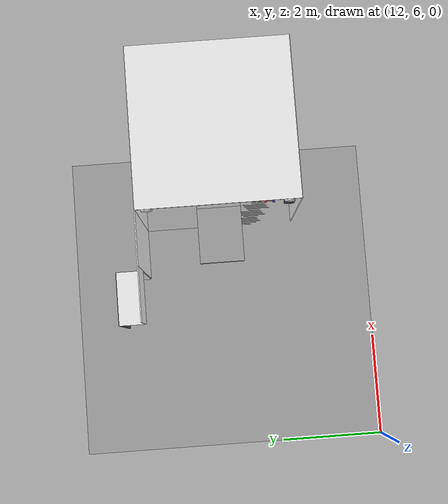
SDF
<sdf version="1.6">
 <world name="default">
  <model name="ceiling_1_5_3_2_1">
   <pose>16.0 9.0 2.55 0.0 0.0 -1.57</pose>
   <link name="link_1">
    <visual name="visual">
     <geometry><box><size>0.8 1 0.1</size></box></geometry>
     <material>
      <script><uri>file://media/materials/scripts/gazebo.material</uri><name>Gazebo/Grey</name></script>
     </material>
    </visual>
    <collision name="collision"><geometry><box><size>0.8 1 0.1</size></box></geometry></collision>
   </link>
   <static>1</static>
  </model>
  <model name="wall_left_front_left_5_3_0_1">
   <static>1</static>
   <pose>16.0 10.5 1.5 0.0 0.0 0.0</pose>
   <link name="link">
    <collision name="collision"><geometry><box><size>1.0 0.02 3.0</size></box></geometry></collision>
    <visual name="visual">
     <material>
      <script><name>Gazebo/White</name><uri>file://media/materials/scripts/gazebo.material</uri></script>
     </material>
     <geometry><box><size>1.0 0.02 3.0</size></box></geometry>
    </visual>
   </link>
  </model>
  <model name="wall_left_front_up_5_3_0_1">
   <static>1</static>
   <pose>15.0 10.5 2.5 0.0 0.0 0.0</pose>
   <link name="link">
    <collision name="collision"><geometry><box><size>1.0 0.02 1.0</size></box></geometry></collision>
    <visual name="visual">
     <material>
      <script><name>Gazebo/White</name><uri>file://media/materials/scripts/gazebo.material</uri></script>
     </material>
     <geometry><box><size>1.0 0.02 1.0</size></box></geometry>
    </visual>
   </link>
  </model>
  <model name="wall_left_inside_back_5_3_0_1">
   <static>1</static>
   <pose>15.0 11.0 1.0 0.0 0.0 0.0</pose>
   <link name="link">
    <collision name="collision"><geometry><box><size>1 0.02 2</size></box></geometry></collision>
    <visual name="visual">
     <material>
      <script><name>Gazebo/DarkGrey</name><uri>file://media/materials/scripts/gazebo.material</uri></script>
     </material>
     <geometry><box><size>1 0.02 2</size></box></geometry>
    </visual>
   </link>
  </model>
  <model name="wall_left_inside_left_5_3_0_1">
   <static>1</static>
   <pose>15.5 10.75 1.0 0.0 0.0 -1.57</pose>
   <link name="link">
    <collision name="collision"><geometry><box><size>0.5 0.02 2</size></box></geometry></collision>
    <visual name="visual">
     <material>
      <script><name>Gazebo/White</name><uri>file://media/materials/scripts/gazebo.material</uri></script>
     </material>
     <geometry><box><size>0.5 0.02 2</size></box></geometry>
    </visual>
   </link>
  </model>
  <model name="wall_left_inside_top_5_3_0_1">
   <static>1</static>
   <pose>15.0 10.75 2.0 1.57 0.0 0.0</pose>
   <link name="link">
    <collision name="collision"><geometry><box><size>1 0.02 0.5</size></box></geometry></collision>
    <visual name="visual">
     <material>
      <script><name>Gazebo/White</name><uri>file://media/materials/scripts/gazebo.material</uri></script>
     </material>
     <geometry><box><size>1 0.02 0.5</size></box></geometry>
    </visual>
   </link>
  </model>
  <model name="wall_bottom_5_3_0_1">
   <static>1</static>
   <pose>15.0 9.0 0.0 0.0 0.0 -1.57</pose>
   <link name="link">
    <collision name="collision"><geometry><box><size>6.0 6.0 0.02</size></box></geometry></collision>
    <visual name="visual">
     <material>
      <script><name>Gazebo/Grey</name><uri>file://media/materials/scripts/gazebo.material</uri></script>
     </material>
     <geometry><box><size>6.0 6.0 0.02</size></box></geometry>
    </visual>
   </link>
  </model>
  <model name="wall_right_6_3_0_4">
   <static>1</static>
   <pose>18.0 7.5 1.5 0.0 0.0 0.0</pose>
   <link name="link">
    <collision name="collision"><geometry><box><size>3.0 0.02 3.0</size></box></geometry></collision>
    <visual name="visual">
     <material>
      <script><name>Gazebo/White</name><uri>file://media/materials/scripts/gazebo.material</uri></script>
     </material>
     <geometry><box><size>3.0 0.02 3.0</size></box></geometry>
    </visual>
   </link>
  </model>
  <model name="wall_left_6_3_0_4">
   <static>1</static>
   <pose>18.0 10.5 1.5 0.0 0.0 0.0</pose>
   <link name="link">
    <collision name="collision"><geometry><box><size>3.0 0.02 3.0</size></box></geometry></collision>
    <visual name="visual">
     <material>
      <script><name>Gazebo/White</name><uri>file://media/materials/scripts/gazebo.material</uri></script>
     </material>
     <geometry><box><size>3.0 0.02 3.0</size></box></geometry>
    </visual>
   </link>
  </model>
  <model name="wall_top_6_3_0_4">
   <static>1</static>
   <pose>18.0 9.0 3.0 1.57 0.0 -1.57</pose>
   <link name="link">
    <collision name="collision"><geometry><box><size>3.0 0.02 3.0</size></box></geometry></collision>
    <visual name="visual">
     <material>
      <script><name>Gazebo/White</name><uri>file://media/materials/scripts/gazebo.material</uri></script>
     </material>
     <geometry><box><size>3.0 0.02 3.0</size></box></geometry>
    </visual>
   </link>
  </model>
  <model name="ceiling_1_6_3_0_4">
   <pose>18.0 9.0 2.55 0.0 0.0 -1.57</pose>
   <link name="link_1">
    <visual name="visual">
     <geometry><box><size>0.8 1 0.1</size></box></geometry>
     <material>
      <script><uri>file://media/materials/scripts/gazebo.material</uri><name>Gazebo/Grey</name></script>
     </material>
    </visual>
    <collision name="collision"><geometry><box><size>0.8 1 0.1</size></box></geometry></collision>
   </link>
   <static>1</static>
  </model>
  <model name="ceiling_1_6_3_1_4">
   <pose>17.0 9.0 2.55 0.0 0.0 -1.57</pose>
   <link name="link_1">
    <visual name="visual">
     <geometry><box><size>0.8 1 0.1</size></box></geometry>
     <material>
      <script><uri>file://media/materials/scripts/gazebo.material</uri><name>Gazebo/Grey</name></script>
     </material>
    </visual>
    <collision name="collision"><geometry><box><size>0.8 1 0.1</size></box></geometry></collision>
   </link>
   <static>1</static>
  </model>
  <model name="ceiling_1_6_3_2_4">
   <pose>19.0 9.0 2.55 0.0 0.0 -1.57</pose>
   <link name="link_1">
    <visual name="visual">
     <geometry><box><size>0.8 1 0.1</size></box></geometry>
     <material>
      <script><uri>file://media/materials/scripts/gazebo.material</uri><name>Gazebo/Grey</name></script>
     </material>
    </visual>
    <collision name="collision"><geometry><box><size>0.8 1 0.1</size></box></geometry></collision>
   </link>
   <static>1</static>
  </model>
  <model name="white_pipe_left_6_3_0_4">
   <static>1</static>
   <pose>18.0 9.0 2.76 0.0 0.0 -1.57</pose>
   <link name="link_0">
    <visual name="visual">
     <pose>-1.3 0 0 1.57 0 0</pose>
     <geometry><cylinder><radius>0.1</radius><length>3.0</length></cylinder></geometry>
     <material>
      <script><uri>file://media/materials/scripts/gazebo.material</uri><name>Gazebo/White</name></script>
     </material>
    </visual>
    <collision name="collision">
     <pose>-1.3 0 0 1.57 0 0</pose>
     <geometry><cylinder><radius>0.1</radius><length>3.0</length></cylinder></geometry>
    </collision>
   </link>
  </model>
  <model name="white_pipe_right_6_3_0_4">
   <static>1</static>
   <pose>18.0 9.0 2.76 0.0 0.0 -1.57</pose>
   <link name="link_0">
    <visual name="visual">
     <pose>1.3 0 0 1.57 0 0</pose>
     <geometry><cylinder><radius>0.1</radius><length>3.0</length></cylinder></geometry>
     <material>
      <script><uri>file://media/materials/scripts/gazebo.material</uri><name>Gazebo/White</name></script>
     </material>
    </visual>
    <collision name="collision">
     <pose>1.3 0 0 1.57 0 0</pose>
     <geometry><cylinder><radius>0.1</radius><length>3.0</length></cylinder></geometry>
    </collision>
   </link>
  </model>
  <model name="black_pipe_right_6_3_0_4">
   <static>1</static>
   <pose>18.0 9.0 2.76 0.0 0.0 -1.57</pose>
   <link name="link_0">
    <visual name="visual">
     <pose>1.3 0 -0.25 1.57 0 0</pose>
     <geometry><cylinder><radius>0.1</radius><length>3.0</length></cylinder></geometry>
     <material>
      <script><uri>file://media/materials/scripts/gazebo.material</uri><name>Gazebo/Black</name></script>
     </material>
    </visual>
    <collision name="collision">
     <pose>1.3 0 -0.25 1.57 0 0</pose>
     <geometry><cylinder><radius>0.1</radius><length>3.0</length></cylinder></geometry>
    </collision>
   </link>
  </model>
  <model name="grey_pipe_right_6_3_0_4">
   <static>1</static>
   <pose>18.0 9.0 2.76 0.0 0.0 -1.57</pose>
   <link name="link_0">
    <visual name="visual">
     <pose>0.7 0 0 1.57 0 0</pose>
     <geometry><cylinder><radius>0.02</radius><length>3.0</length></cylinder></geometry>
     <material>
      <script><uri>file://media/materials/scripts/gazebo.material</uri><name>Gazebo/Grey</name></script>
     </material>
    </visual>
    <collision name="collision">
     <pose>0.7 0 0 1.57 0 0</pose>
     <geometry><cylinder><radius>0.02</radius><length>3.0</length></cylinder></geometry>
    </collision>
   </link>
  </model>
  <model name="red_pipe_right_6_3_0_4">
   <static>1</static>
   <pose>18.0 9.0 2.76 0.0 0.0 -1.57</pose>
   <link name="link_0">
    <visual name="visual">
     <pose>0.85 0 0 1.57 0 0</pose>
     <geometry><cylinder><radius>0.02</radius><length>3.0</length></cylinder></geometry>
     <material>
      <script><uri>file://media/materials/scripts/gazebo.material</uri><name>Gazebo/Red</name></script>
     </material>
    </visual>
    <collision name="collision">
     <pose>0.85 0 0 1.57 0 0</pose>
     <geometry><cylinder><radius>0.02</radius><length>3.0</length></cylinder></geometry>
    </collision>
   </link>
  </model>
  <model name="blue_pipe_right_6_3_0_4">
   <static>1</static>
   <pose>18.0 9.0 2.76 0.0 0.0 -1.57</pose>
   <link name="link_0">
    <visual name="visual">
     <pose>1 0 0 1.57 0 0</pose>
     <geometry><cylinder><radius>0.02</radius><length>3.0</length></cylinder></geometry>
     <material>
      <script><uri>file://media/materials/scripts/gazebo.material</uri><name>Gazebo/Blue</name></script>
     </material>
    </visual>
    <collision name="collision">
     <pose>1 0 0 1.57 0 0</pose>
     <geometry><cylinder><radius>0.02</radius><length>3.0</length></cylinder></geometry>
    </collision>
   </link>
  </model>
  <model name="wall_bottom_6_3_0_4">
   <static>1</static>
   <pose>18.0 9.0 0.0 0.0 0.0 -1.57</pose>
   <link name="link">
    <collision name="collision"><geometry><box><size>3.0 3.0 0.02</size></box></geometry></collision>
    <visual name="visual">
     <material>
      <script><name>Gazebo/Grey</name><uri>file://media/materials/scripts/gazebo.material</uri></script>
     </material>
     <geometry><box><size>3.0 3.0 0.02</size></box></geometry>
    </visual>
   </link>
  </model>
 </world>
</sdf>
